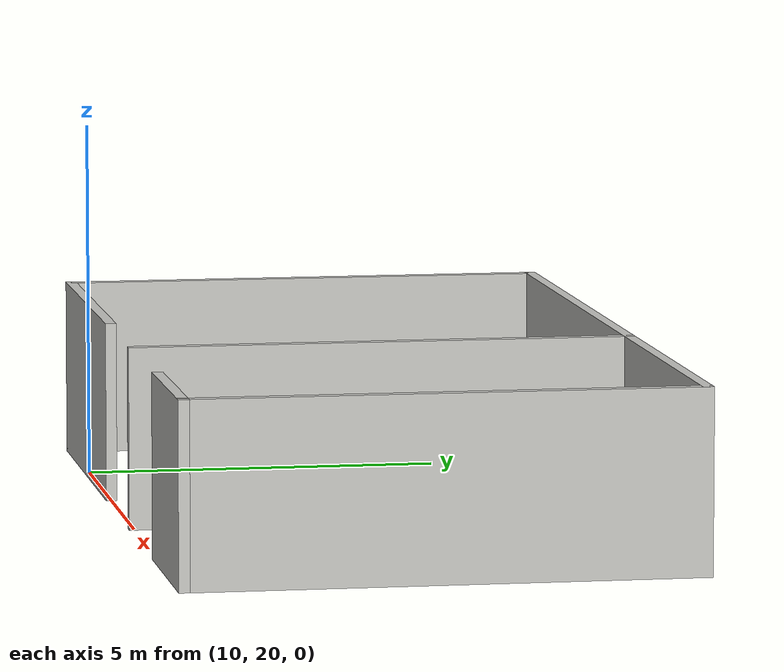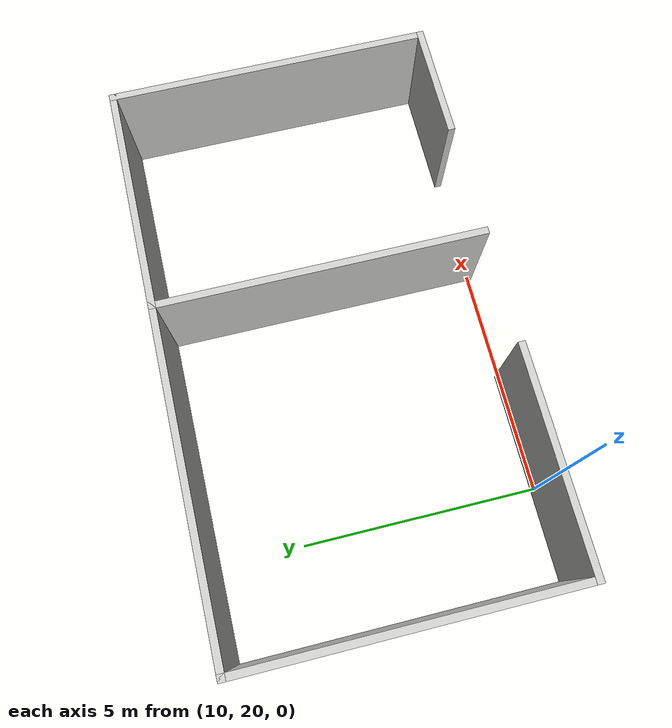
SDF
<?xml version='1.0'?>
<sdf version='1.7'>
  <model name='Room2'>
    <pose>9.9875 13.4625 0 0 -0 0</pose>
    <link name='Wall_0'>
      <collision name='Wall_0_Collision'>
        <geometry>
          <box>
            <size>7 0.15 2.5</size>
          </box>
        </geometry>
        <pose>0 0 1.25 0 -0 0</pose>
      </collision>
      <visual name='Wall_0_Visual'>
        <pose>0 0 1.25 0 -0 0</pose>
        <geometry>
          <box>
            <size>7 0.15 2.5</size>
          </box>
        </geometry>
        <material>
          <script>
            <uri>file://media/materials/scripts/gazebo.material</uri>
            <name>Gazebo/CeilingTiled</name>
          </script>
          <ambient>1 1 1 1</ambient>
        </material>
        <meta>
          <layer>0</layer>
        </meta>
      </visual>
      <pose>-1.9875 9.9625 0 0 -0 -1.5708</pose>
    </link>
    <link name='Wall_10'>
      <collision name='Wall_10_Collision'>
        <geometry>
          <box>
            <size>4.65 0.15 2.5</size>
          </box>
        </geometry>
        <pose>0 0 1.25 0 -0 0</pose>
      </collision>
      <visual name='Wall_10_Visual'>
        <pose>0 0 1.25 0 -0 0</pose>
        <geometry>
          <box>
            <size>4.65 0.15 2.5</size>
          </box>
        </geometry>
        <material>
          <script>
            <uri>file://media/materials/scripts/gazebo.material</uri>
            <name>Gazebo/CeilingTiled</name>
          </script>
          <ambient>1 1 1 1</ambient>
        </material>
        <meta>
          <layer>0</layer>
        </meta>
      </visual>
      <pose>0.2625 6.5375 0 0 -0 0</pose>
    </link>
    <link name='Wall_12'>
      <collision name='Wall_12_Collision'>
        <geometry>
          <box>
            <size>2.55 0.15 2.5</size>
          </box>
        </geometry>
        <pose>0 0 1.25 0 -0 0</pose>
      </collision>
      <visual name='Wall_12_Visual'>
        <pose>0 0 1.25 0 -0 0</pose>
        <geometry>
          <box>
            <size>2.55 0.15 2.5</size>
          </box>
        </geometry>
        <material>
          <script>
            <uri>file://media/materials/scripts/gazebo.material</uri>
            <name>Gazebo/CeilingTiled</name>
          </script>
          <ambient>1 1 1 1</ambient>
        </material>
        <meta>
          <layer>0</layer>
        </meta>
      </visual>
      <pose>8.7125 6.5375 0 0 -0 3.14159</pose>
    </link>
    <link name='Wall_2'>
      <collision name='Wall_2_Collision'>
        <geometry>
          <box>
            <size>12.05 0.15 2.5</size>
          </box>
        </geometry>
        <pose>0 0 1.25 0 -0 0</pose>
      </collision>
      <visual name='Wall_2_Visual'>
        <pose>0 0 1.25 0 -0 0</pose>
        <geometry>
          <box>
            <size>12.05 0.15 2.5</size>
          </box>
        </geometry>
        <material>
          <script>
            <uri>file://media/materials/scripts/gazebo.material</uri>
            <name>Gazebo/CeilingTiled</name>
          </script>
          <ambient>1 1 1 1</ambient>
        </material>
        <meta>
          <layer>0</layer>
        </meta>
      </visual>
      <pose>3.9625 13.3875 0 0 -0 0</pose>
    </link>
    <link name='Wall_4'>
      <collision name='Wall_4_Collision'>
        <geometry>
          <box>
            <size>7 0.15 2.5</size>
          </box>
        </geometry>
        <pose>0 0 1.25 0 -0 0</pose>
      </collision>
      <visual name='Wall_4_Visual'>
        <pose>0 0 1.25 0 -0 0</pose>
        <geometry>
          <box>
            <size>7 0.15 2.5</size>
          </box>
        </geometry>
        <material>
          <script>
            <uri>file://media/materials/scripts/gazebo.material</uri>
            <name>Gazebo/CeilingTiled</name>
          </script>
          <ambient>1 1 1 1</ambient>
        </material>
        <meta>
          <layer>0</layer>
        </meta>
      </visual>
      <pose>9.9125 9.9625 0 0 -0 -1.5708</pose>
    </link>
    <link name='Wall_7'>
      <collision name='Wall_7_Collision'>
        <geometry>
          <box>
            <size>7 0.15 2.5</size>
          </box>
        </geometry>
        <pose>0 0 1.25 0 -0 0</pose>
      </collision>
      <visual name='Wall_7_Visual'>
        <pose>0 0 1.25 0 -0 0</pose>
        <geometry>
          <box>
            <size>7 0.15 2.5</size>
          </box>
        </geometry>
        <material>
          <script>
            <uri>file://media/materials/scripts/gazebo.material</uri>
            <name>Gazebo/CeilingTiled</name>
          </script>
          <ambient>1 1 1 1</ambient>
        </material>
        <meta>
          <layer>0</layer>
        </meta>
      </visual>
      <pose>5.0125 9.9625 0 0 -0 -1.5708</pose>
    </link>
    <static>1</static>
  </model>
</sdf>
